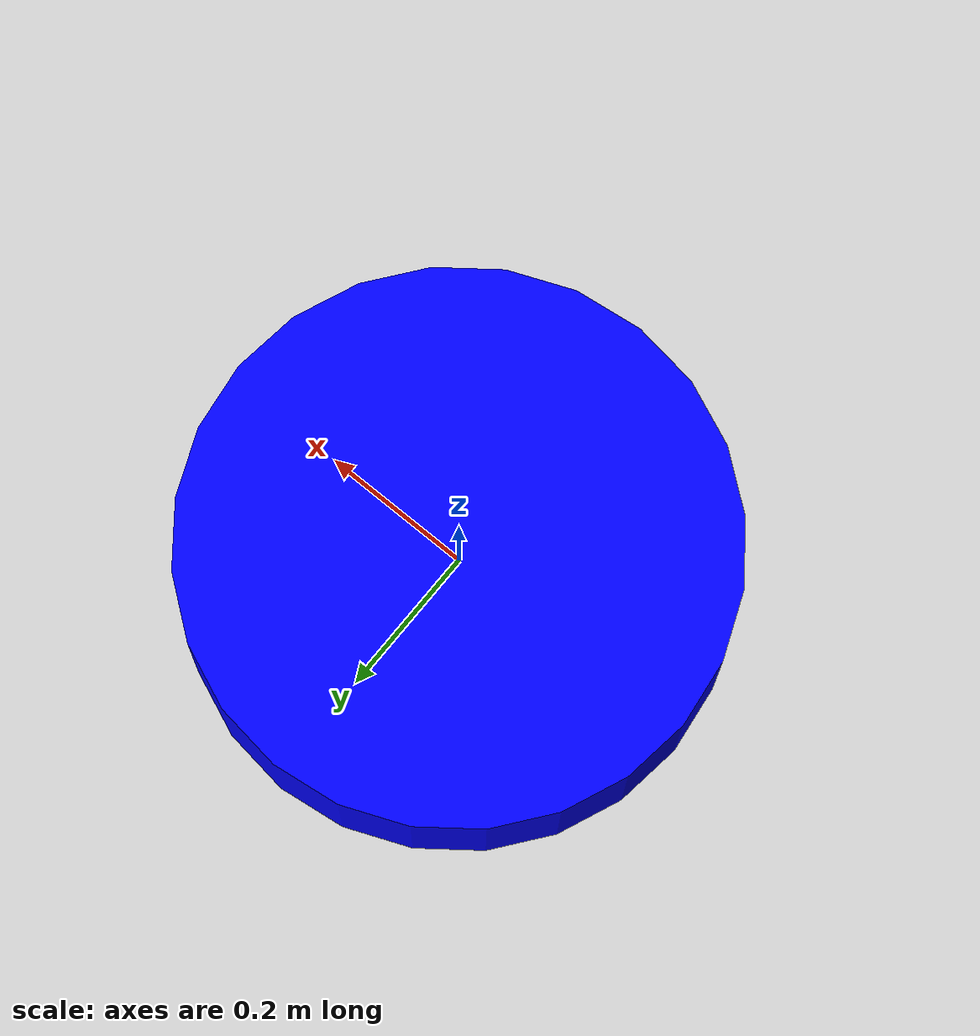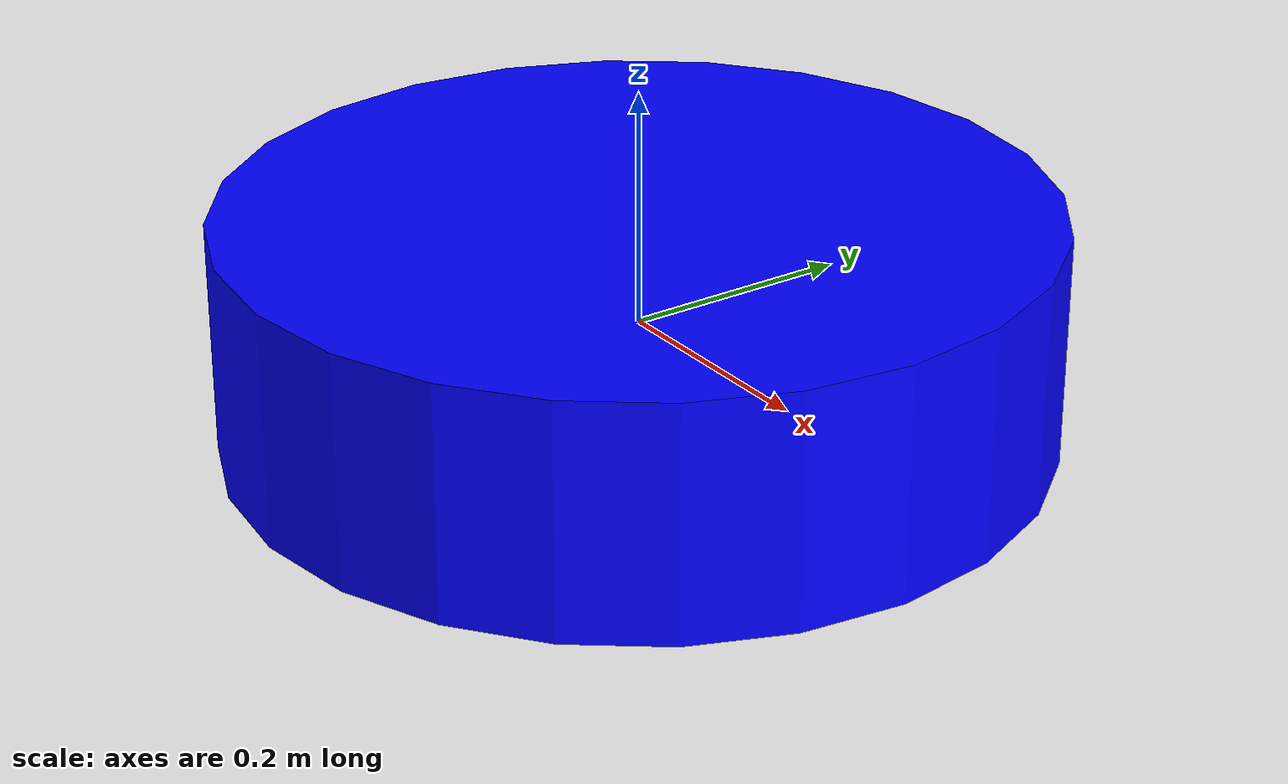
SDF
<?xml version='1.0'?>
<sdf version='1.7'>
  <model name='cleaner_robot_2'>
    <link name='base_link'>
      <self_collide>0</self_collide>
      <inertial>
        <pose>0 0 0 0 -0 0</pose>
        <inertia>
          <ixx>1</ixx>
          <ixy>0</ixy>
          <ixz>0</ixz>
          <iyy>1</iyy>
          <iyz>0</iyz>
          <izz>1</izz>
        </inertia>
        <mass>1</mass>
      </inertial>
      <enable_wind>0</enable_wind>
      <kinematic>0</kinematic>
      <pose>0 0 0 0 -0 0</pose>
      <visual name='visual'>
        <geometry>
          <cylinder>
            <radius>0.35</radius>
            <length>0.2</length>
          </cylinder>
        </geometry>
        <material>
          <ambient>0 0 1 1</ambient>
          <shader type='pixel'/>
          <script>
            <name>ModelPreview_4::base_link::visual_MATERIAL_</name>
            <uri>__default__</uri>
          </script>
        </material>
        <pose>0 0 0 0 -0 0</pose>
        <transparency>0</transparency>
        <cast_shadows>1</cast_shadows>
      </visual>
      <collision name='collision'>
        <laser_retro>0</laser_retro>
        <max_contacts>10</max_contacts>
        <pose>0 0 0 0 -0 0</pose>
        <geometry>
          <cylinder>
            <radius>0.35</radius>
            <length>0.2</length>
          </cylinder>
        </geometry>
        <surface>
          <friction>
            <ode>
              <mu>1</mu>
              <mu2>1</mu2>
              <fdir1>0 0 0</fdir1>
              <slip1>0</slip1>
              <slip2>0</slip2>
            </ode>
            <torsional>
              <coefficient>1</coefficient>
              <patch_radius>0</patch_radius>
              <surface_radius>0</surface_radius>
              <use_patch_radius>1</use_patch_radius>
              <ode>
                <slip>0</slip>
              </ode>
            </torsional>
          </friction>
          <bounce>
            <restitution_coefficient>0</restitution_coefficient>
            <threshold>1e+06</threshold>
          </bounce>
          <contact>
            <collide_without_contact>0</collide_without_contact>
            <collide_without_contact_bitmask>1</collide_without_contact_bitmask>
            <collide_bitmask>1</collide_bitmask>
            <ode>
              <soft_cfm>0</soft_cfm>
              <soft_erp>0.2</soft_erp>
              <kp>1e+13</kp>
              <kd>1</kd>
              <max_vel>0.01</max_vel>
              <min_depth>0</min_depth>
            </ode>
            <bullet>
              <split_impulse>1</split_impulse>
              <split_impulse_penetration_threshold>-0.01</split_impulse_penetration_threshold>
              <soft_cfm>0</soft_cfm>
              <soft_erp>0.2</soft_erp>
              <kp>1e+13</kp>
              <kd>1</kd>
            </bullet>
          </contact>
        </surface>
      </collision>
    </link>
    <static>0</static>
    <allow_auto_disable>1</allow_auto_disable>
  </model>
</sdf>
